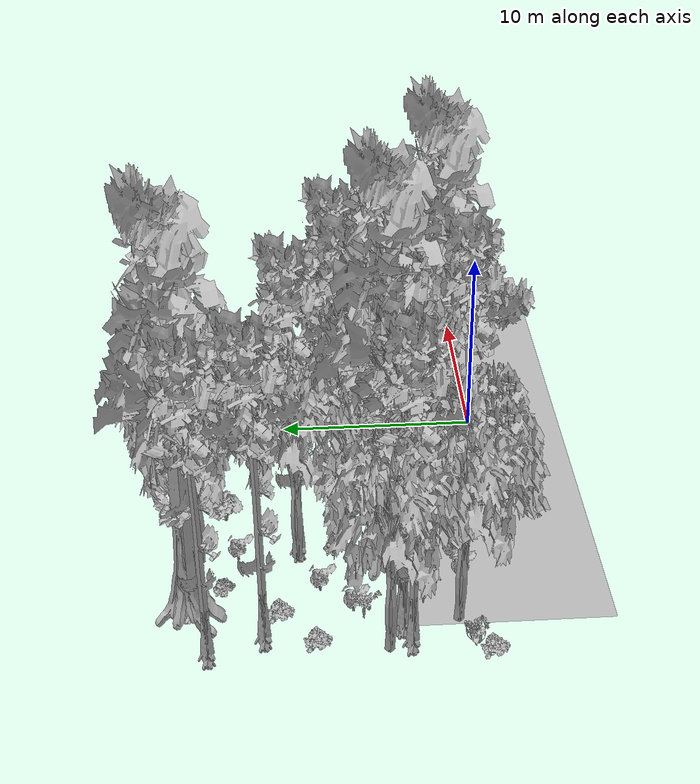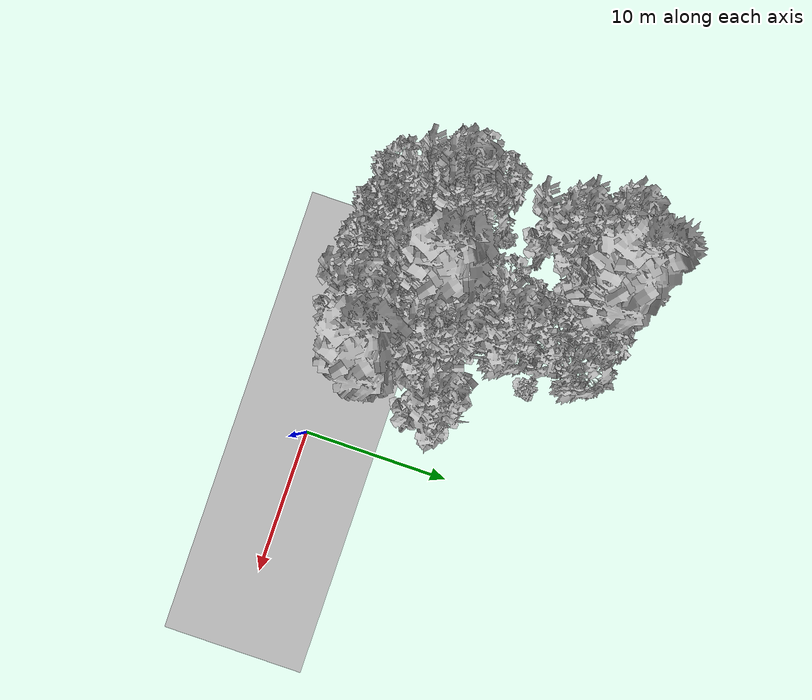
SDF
<sdf version="1.7">
 <world name="default">
  <model name="ground_plane">
   <static>1</static>
   <link name="link">
    <collision name="collision">
     <geometry><plane><normal>0 0 1</normal><size>100 100</size></plane></geometry>
     <surface><contact><ode><min_depth>0.01</min_depth><max_vel>0</max_vel></ode></contact></surface>
    </collision>
    <visual name="grass">
     <cast_shadows>0</cast_shadows>
     <geometry>
      <mesh>
       <scale>0.5814285714285714 0.18142857142857144 0.1</scale>
       <uri>file://grass_plane/meshes/grass_plane.dae</uri>
      </mesh>
     </geometry>
    </visual>
   </link>
  </model>
  <model name="Tree 23">
   <static>1</static>
   <pose>-11.818554850499751 4.779480041875914 0 1.57079 -0 0</pose>
   <link name="link">
    <collision name="collision">
     <geometry><mesh><scale>3.5 5 3.5</scale><uri>model://tree_9/meshes/tree_9.obj</uri></mesh></geometry>
    </collision>
    <visual name="visual">
     <geometry><mesh><scale>3.5 5 3.5</scale><uri>model://tree_9/meshes/tree_9.obj</uri></mesh></geometry>
    </visual>
   </link>
  </model>
  <model name="Tree 41">
   <static>1</static>
   <pose>-17.222248262785584 5.614314968492618 0 1.57079 -0 0</pose>
   <link name="link">
    <collision name="collision">
     <geometry><mesh><scale>3.5 5 3.5</scale><uri>model://tree_2/meshes/tree_2.obj</uri></mesh></geometry>
    </collision>
    <visual name="visual">
     <geometry><mesh><scale>3.5 5 3.5</scale><uri>model://tree_2/meshes/tree_2.obj</uri></mesh></geometry>
    </visual>
   </link>
  </model>
  <model name="Tree 46">
   <static>1</static>
   <pose>-13.187777131244381 1.9382227546065316 0 1.57079 -0 0</pose>
   <link name="link">
    <collision name="collision">
     <geometry><mesh><scale>3.5 5 3.5</scale><uri>model://tree_2/meshes/tree_2.obj</uri></mesh></geometry>
    </collision>
    <visual name="visual">
     <geometry><mesh><scale>3.5 5 3.5</scale><uri>model://tree_2/meshes/tree_2.obj</uri></mesh></geometry>
    </visual>
   </link>
  </model>
  <model name="Tree 60">
   <static>1</static>
   <pose>-6.207286731355687 2.621393358264843 0 1.57079 -0 0</pose>
   <link name="link">
    <collision name="collision">
     <geometry><mesh><scale>3.5 5 3.5</scale><uri>model://tree_4/meshes/tree_4.obj</uri></mesh></geometry>
    </collision>
    <visual name="visual">
     <geometry><mesh><scale>3.5 5 3.5</scale><uri>model://tree_4/meshes/tree_4.obj</uri></mesh></geometry>
    </visual>
   </link>
  </model>
  <model name="Tree 68">
   <static>1</static>
   <pose>-15.966507901455167 11.190178659626554 0 1.57079 -0 0</pose>
   <link name="link">
    <collision name="collision">
     <geometry><mesh><scale>3.5 5 3.5</scale><uri>model://tree_9/meshes/tree_9.obj</uri></mesh></geometry>
    </collision>
    <visual name="visual">
     <geometry><mesh><scale>3.5 5 3.5</scale><uri>model://tree_9/meshes/tree_9.obj</uri></mesh></geometry>
    </visual>
   </link>
  </model>
  <model name="Tree 103">
   <static>1</static>
   <pose>-7.960746110227625 5.341860858735469 0 1.57079 -0 0</pose>
   <link name="link">
    <collision name="collision">
     <geometry><mesh><scale>3.5 5 3.5</scale><uri>model://tree_9/meshes/tree_9.obj</uri></mesh></geometry>
    </collision>
    <visual name="visual">
     <geometry><mesh><scale>3.5 5 3.5</scale><uri>model://tree_9/meshes/tree_9.obj</uri></mesh></geometry>
    </visual>
   </link>
  </model>
  <model name="Tree 114">
   <static>1</static>
   <pose>-15.540538726655534 4.893649053372908 0 1.57079 -0 0</pose>
   <link name="link">
    <collision name="collision">
     <geometry><mesh><scale>3.5 5 3.5</scale><uri>model://tree_9/meshes/tree_9.obj</uri></mesh></geometry>
    </collision>
    <visual name="visual">
     <geometry><mesh><scale>3.5 5 3.5</scale><uri>model://tree_9/meshes/tree_9.obj</uri></mesh></geometry>
    </visual>
   </link>
  </model>
  <model name="Tree 128">
   <static>1</static>
   <pose>-14.082159465384422 14.536222618780723 0 1.57079 -0 0</pose>
   <link name="link">
    <collision name="collision">
     <geometry><mesh><scale>3.5 5 3.5</scale><uri>model://tree_4/meshes/tree_4.obj</uri></mesh></geometry>
    </collision>
    <visual name="visual">
     <geometry><mesh><scale>3.5 5 3.5</scale><uri>model://tree_4/meshes/tree_4.obj</uri></mesh></geometry>
    </visual>
   </link>
  </model>
  <model name="Tree 143">
   <static>1</static>
   <pose>-15.4959877633204 2.332693196801735 0 1.57079 -0 0</pose>
   <link name="link">
    <collision name="collision">
     <geometry><mesh><scale>3.5 5 3.5</scale><uri>model://tree_2/meshes/tree_2.obj</uri></mesh></geometry>
    </collision>
    <visual name="visual">
     <geometry><mesh><scale>3.5 5 3.5</scale><uri>model://tree_2/meshes/tree_2.obj</uri></mesh></geometry>
    </visual>
   </link>
  </model>
  <model name="Tree 152">
   <static>1</static>
   <pose>-9.91875326157021 9.4547125886331 0 1.57079 -0 0</pose>
   <link name="link">
    <collision name="collision">
     <geometry><mesh><scale>3.5 5 3.5</scale><uri>model://tree_9/meshes/tree_9.obj</uri></mesh></geometry>
    </collision>
    <visual name="visual">
     <geometry><mesh><scale>3.5 5 3.5</scale><uri>model://tree_9/meshes/tree_9.obj</uri></mesh></geometry>
    </visual>
   </link>
  </model>
  <model name="Tree 199">
   <static>1</static>
   <pose>-8.280369621626804 6.875583863120525 0 1.57079 -0 0</pose>
   <link name="link">
    <collision name="collision">
     <geometry><mesh><scale>3.5 5 3.5</scale><uri>model://tree_9/meshes/tree_9.obj</uri></mesh></geometry>
    </collision>
    <visual name="visual">
     <geometry><mesh><scale>3.5 5 3.5</scale><uri>model://tree_9/meshes/tree_9.obj</uri></mesh></geometry>
    </visual>
   </link>
  </model>
  <model name="Tree 233">
   <static>1</static>
   <pose>-10.930808138366785 4.563395180117645 0 1.57079 -0 0</pose>
   <link name="link">
    <collision name="collision">
     <geometry><mesh><scale>3.5 5 3.5</scale><uri>model://tree_9/meshes/tree_9.obj</uri></mesh></geometry>
    </collision>
    <visual name="visual">
     <geometry><mesh><scale>3.5 5 3.5</scale><uri>model://tree_9/meshes/tree_9.obj</uri></mesh></geometry>
    </visual>
   </link>
  </model>
  <model name="Tree 253">
   <static>1</static>
   <pose>-16.87975511325177 13.70785440915375 0 1.57079 -0 0</pose>
   <link name="link">
    <collision name="collision">
     <geometry><mesh><scale>3.5 5 3.5</scale><uri>model://tree_9/meshes/tree_9.obj</uri></mesh></geometry>
    </collision>
    <visual name="visual">
     <geometry><mesh><scale>3.5 5 3.5</scale><uri>model://tree_9/meshes/tree_9.obj</uri></mesh></geometry>
    </visual>
   </link>
  </model>
  <model name="Tree 270">
   <static>1</static>
   <pose>-10.692120012223832 9.53560949219164 0 1.57079 -0 0</pose>
   <link name="link">
    <collision name="collision">
     <geometry><mesh><scale>3.5 5 3.5</scale><uri>model://tree_2/meshes/tree_2.obj</uri></mesh></geometry>
    </collision>
    <visual name="visual">
     <geometry><mesh><scale>3.5 5 3.5</scale><uri>model://tree_2/meshes/tree_2.obj</uri></mesh></geometry>
    </visual>
   </link>
  </model>
  <model name="Tree 306">
   <static>1</static>
   <pose>-10.540950112092183 5.172705222903328 0 1.57079 -0 0</pose>
   <link name="link">
    <collision name="collision">
     <geometry><mesh><scale>3.5 5 3.5</scale><uri>model://tree_2/meshes/tree_2.obj</uri></mesh></geometry>
    </collision>
    <visual name="visual">
     <geometry><mesh><scale>3.5 5 3.5</scale><uri>model://tree_2/meshes/tree_2.obj</uri></mesh></geometry>
    </visual>
   </link>
  </model>
  <model name="Tree 332">
   <static>1</static>
   <pose>-16.639964847945834 4.57570754702666 0 1.57079 -0 0</pose>
   <link name="link">
    <collision name="collision">
     <geometry><mesh><scale>3.5 5 3.5</scale><uri>model://tree_9/meshes/tree_9.obj</uri></mesh></geometry>
    </collision>
    <visual name="visual">
     <geometry><mesh><scale>3.5 5 3.5</scale><uri>model://tree_9/meshes/tree_9.obj</uri></mesh></geometry>
    </visual>
   </link>
  </model>
  <model name="Tree 357">
   <static>1</static>
   <pose>-15.363287156652369 4.962918125460238 0 1.57079 -0 0</pose>
   <link name="link">
    <collision name="collision">
     <geometry><mesh><scale>3.5 5 3.5</scale><uri>model://tree_9/meshes/tree_9.obj</uri></mesh></geometry>
    </collision>
    <visual name="visual">
     <geometry><mesh><scale>3.5 5 3.5</scale><uri>model://tree_9/meshes/tree_9.obj</uri></mesh></geometry>
    </visual>
   </link>
  </model>
  <model name="Tree 362">
   <static>1</static>
   <pose>-11.349505516098759 5.461158906671169 0 1.57079 -0 0</pose>
   <link name="link">
    <collision name="collision">
     <geometry><mesh><scale>3.5 5 3.5</scale><uri>model://tree_4/meshes/tree_4.obj</uri></mesh></geometry>
    </collision>
    <visual name="visual">
     <geometry><mesh><scale>3.5 5 3.5</scale><uri>model://tree_4/meshes/tree_4.obj</uri></mesh></geometry>
    </visual>
   </link>
  </model>
  <model name="Tree 371">
   <static>1</static>
   <pose>-6.192837571988079 3.274893601886724 0 1.57079 -0 0</pose>
   <link name="link">
    <collision name="collision">
     <geometry><mesh><scale>3.5 5 3.5</scale><uri>model://tree_9/meshes/tree_9.obj</uri></mesh></geometry>
    </collision>
    <visual name="visual">
     <geometry><mesh><scale>3.5 5 3.5</scale><uri>model://tree_9/meshes/tree_9.obj</uri></mesh></geometry>
    </visual>
   </link>
  </model>
  <model name="Tree 381">
   <static>1</static>
   <pose>-4.665152386450565 7.2069608199087725 0 1.57079 -0 0</pose>
   <link name="link">
    <collision name="collision">
     <geometry><mesh><scale>3.5 5 3.5</scale><uri>model://tree_9/meshes/tree_9.obj</uri></mesh></geometry>
    </collision>
    <visual name="visual">
     <geometry><mesh><scale>3.5 5 3.5</scale><uri>model://tree_9/meshes/tree_9.obj</uri></mesh></geometry>
    </visual>
   </link>
  </model>
  <model name="Tree 427">
   <static>1</static>
   <pose>-8.679567506703293 1.3437048334381494 0 1.57079 -0 0</pose>
   <link name="link">
    <collision name="collision">
     <geometry><mesh><scale>3.5 5 3.5</scale><uri>model://tree_9/meshes/tree_9.obj</uri></mesh></geometry>
    </collision>
    <visual name="visual">
     <geometry><mesh><scale>3.5 5 3.5</scale><uri>model://tree_9/meshes/tree_9.obj</uri></mesh></geometry>
    </visual>
   </link>
  </model>
  <model name="Tree 449">
   <static>1</static>
   <pose>-10.745559329517135 14.154895496986232 0 1.57079 -0 0</pose>
   <link name="link">
    <collision name="collision">
     <geometry><mesh><scale>3.5 5 3.5</scale><uri>model://tree_2/meshes/tree_2.obj</uri></mesh></geometry>
    </collision>
    <visual name="visual">
     <geometry><mesh><scale>3.5 5 3.5</scale><uri>model://tree_2/meshes/tree_2.obj</uri></mesh></geometry>
    </visual>
   </link>
  </model>
  <model name="Bush 28">
   <static>1</static>
   <pose>-12.549037422135044 1.9633630091779146 0 1.57079 -0 0</pose>
   <link name="link">
    <collision name="collision">
     <geometry><mesh><scale>2 2 2</scale><uri>model://bush_0/meshes/bush_0.obj</uri></mesh></geometry>
     <surface><contact><collide_without_contact>false</collide_without_contact></contact></surface>
    </collision>
    <visual name="visual">
     <geometry><mesh><scale>2 2 2</scale><uri>model://bush_0/meshes/bush_0.obj</uri></mesh></geometry>
    </visual>
   </link>
  </model>
  <model name="Bush 32">
   <static>1</static>
   <pose>-14.380478980024094 14.650564487299963 0 1.57079 -0 0</pose>
   <link name="link">
    <collision name="collision">
     <geometry><mesh><scale>2 2 2</scale><uri>model://bush_2/meshes/bush_2.obj</uri></mesh></geometry>
     <surface><contact><collide_without_contact>false</collide_without_contact></contact></surface>
    </collision>
    <visual name="visual">
     <geometry><mesh><scale>2 2 2</scale><uri>model://bush_2/meshes/bush_2.obj</uri></mesh></geometry>
    </visual>
   </link>
  </model>
  <model name="Bush 57">
   <static>1</static>
   <pose>-13.03138302742412 8.566727882563928 0 1.57079 -0 0</pose>
   <link name="link">
    <collision name="collision">
     <geometry><mesh><scale>2 2 2</scale><uri>model://bush_0/meshes/bush_0.obj</uri></mesh></geometry>
     <surface><contact><collide_without_contact>false</collide_without_contact></contact></surface>
    </collision>
    <visual name="visual">
     <geometry><mesh><scale>2 2 2</scale><uri>model://bush_0/meshes/bush_0.obj</uri></mesh></geometry>
    </visual>
   </link>
  </model>
  <model name="Bush 71">
   <static>1</static>
   <pose>-11.122695967603455 6.030150215499546 0 1.57079 -0 0</pose>
   <link name="link">
    <collision name="collision">
     <geometry><mesh><scale>2 2 2</scale><uri>model://bush_5/meshes/bush_5.obj</uri></mesh></geometry>
     <surface><contact><collide_without_contact>false</collide_without_contact></contact></surface>
    </collision>
    <visual name="visual">
     <geometry><mesh><scale>2 2 2</scale><uri>model://bush_5/meshes/bush_5.obj</uri></mesh></geometry>
    </visual>
   </link>
  </model>
  <model name="Bush 96">
   <static>1</static>
   <pose>-14.523499983945172 7.112788049363164 0 1.57079 -0 0</pose>
   <link name="link">
    <collision name="collision">
     <geometry><mesh><scale>2 2 2</scale><uri>model://bush_0/meshes/bush_0.obj</uri></mesh></geometry>
     <surface><contact><collide_without_contact>false</collide_without_contact></contact></surface>
    </collision>
    <visual name="visual">
     <geometry><mesh><scale>2 2 2</scale><uri>model://bush_0/meshes/bush_0.obj</uri></mesh></geometry>
    </visual>
   </link>
  </model>
  <model name="Bush 114">
   <static>1</static>
   <pose>-10.097501558235322 7.750137200786323 0 1.57079 -0 0</pose>
   <link name="link">
    <collision name="collision">
     <geometry><mesh><scale>2 2 2</scale><uri>model://bush_2/meshes/bush_2.obj</uri></mesh></geometry>
     <surface><contact><collide_without_contact>false</collide_without_contact></contact></surface>
    </collision>
    <visual name="visual">
     <geometry><mesh><scale>2 2 2</scale><uri>model://bush_2/meshes/bush_2.obj</uri></mesh></geometry>
    </visual>
   </link>
  </model>
  <model name="Bush 115">
   <static>1</static>
   <pose>-11.18006539573399 2.2277751627468874 0 1.57079 -0 0</pose>
   <link name="link">
    <collision name="collision">
     <geometry><mesh><scale>2 2 2</scale><uri>model://bush_0/meshes/bush_0.obj</uri></mesh></geometry>
     <surface><contact><collide_without_contact>false</collide_without_contact></contact></surface>
    </collision>
    <visual name="visual">
     <geometry><mesh><scale>2 2 2</scale><uri>model://bush_0/meshes/bush_0.obj</uri></mesh></geometry>
    </visual>
   </link>
  </model>
  <model name="Bush 142">
   <static>1</static>
   <pose>-12.680316343734077 13.025428469059182 0 1.57079 -0 0</pose>
   <link name="link">
    <collision name="collision">
     <geometry><mesh><scale>2 2 2</scale><uri>model://bush_2/meshes/bush_2.obj</uri></mesh></geometry>
     <surface><contact><collide_without_contact>false</collide_without_contact></contact></surface>
    </collision>
    <visual name="visual">
     <geometry><mesh><scale>2 2 2</scale><uri>model://bush_2/meshes/bush_2.obj</uri></mesh></geometry>
    </visual>
   </link>
  </model>
  <model name="Bush 152">
   <static>1</static>
   <pose>-14.17267036517574 3.876423809300938 0 1.57079 -0 0</pose>
   <link name="link">
    <collision name="collision">
     <geometry><mesh><scale>2 2 2</scale><uri>model://bush_5/meshes/bush_5.obj</uri></mesh></geometry>
     <surface><contact><collide_without_contact>false</collide_without_contact></contact></surface>
    </collision>
    <visual name="visual">
     <geometry><mesh><scale>2 2 2</scale><uri>model://bush_5/meshes/bush_5.obj</uri></mesh></geometry>
    </visual>
   </link>
  </model>
  <model name="Bush 153">
   <static>1</static>
   <pose>-10.617545263969866 12.37486369726432 0 1.57079 -0 0</pose>
   <link name="link">
    <collision name="collision">
     <geometry><mesh><scale>2 2 2</scale><uri>model://bush_0/meshes/bush_0.obj</uri></mesh></geometry>
     <surface><contact><collide_without_contact>false</collide_without_contact></contact></surface>
    </collision>
    <visual name="visual">
     <geometry><mesh><scale>2 2 2</scale><uri>model://bush_0/meshes/bush_0.obj</uri></mesh></geometry>
    </visual>
   </link>
  </model>
  <model name="Bush 156">
   <static>1</static>
   <pose>-15.015591693858319 6.667597978770573 0 1.57079 -0 0</pose>
   <link name="link">
    <collision name="collision">
     <geometry><mesh><scale>2 2 2</scale><uri>model://bush_5/meshes/bush_5.obj</uri></mesh></geometry>
     <surface><contact><collide_without_contact>false</collide_without_contact></contact></surface>
    </collision>
    <visual name="visual">
     <geometry><mesh><scale>2 2 2</scale><uri>model://bush_5/meshes/bush_5.obj</uri></mesh></geometry>
    </visual>
   </link>
  </model>
  <model name="Bush 179">
   <static>1</static>
   <pose>-16.72093320903972 8.852968706021798 0 1.57079 -0 0</pose>
   <link name="link">
    <collision name="collision">
     <geometry><mesh><scale>2 2 2</scale><uri>model://bush_3/meshes/bush_3.obj</uri></mesh></geometry>
     <surface><contact><collide_without_contact>false</collide_without_contact></contact></surface>
    </collision>
    <visual name="visual">
     <geometry><mesh><scale>2 2 2</scale><uri>model://bush_3/meshes/bush_3.obj</uri></mesh></geometry>
    </visual>
   </link>
  </model>
  <model name="Bush 185">
   <static>1</static>
   <pose>-4.58188149309715 1.5176636465596545 0 1.57079 -0 0</pose>
   <link name="link">
    <collision name="collision">
     <geometry><mesh><scale>2 2 2</scale><uri>model://bush_0/meshes/bush_0.obj</uri></mesh></geometry>
     <surface><contact><collide_without_contact>false</collide_without_contact></contact></surface>
    </collision>
    <visual name="visual">
     <geometry><mesh><scale>2 2 2</scale><uri>model://bush_0/meshes/bush_0.obj</uri></mesh></geometry>
    </visual>
   </link>
  </model>
  <model name="Bush 209">
   <static>1</static>
   <pose>-7.61258079041923 12.972474400695454 0 1.57079 -0 0</pose>
   <link name="link">
    <collision name="collision">
     <geometry><mesh><scale>2 2 2</scale><uri>model://bush_1/meshes/bush_1.obj</uri></mesh></geometry>
     <surface><contact><collide_without_contact>false</collide_without_contact></contact></surface>
    </collision>
    <visual name="visual">
     <geometry><mesh><scale>2 2 2</scale><uri>model://bush_1/meshes/bush_1.obj</uri></mesh></geometry>
    </visual>
   </link>
  </model>
  <model name="Bush 235">
   <static>1</static>
   <pose>-16.965912460908214 1.7276142188101495 0 1.57079 -0 0</pose>
   <link name="link">
    <collision name="collision">
     <geometry><mesh><scale>2 2 2</scale><uri>model://bush_4/meshes/bush_4.obj</uri></mesh></geometry>
     <surface><contact><collide_without_contact>false</collide_without_contact></contact></surface>
    </collision>
    <visual name="visual">
     <geometry><mesh><scale>2 2 2</scale><uri>model://bush_4/meshes/bush_4.obj</uri></mesh></geometry>
    </visual>
   </link>
  </model>
  <model name="Bush 242">
   <static>1</static>
   <pose>-14.763912508183253 10.482806082376438 0 1.57079 -0 0</pose>
   <link name="link">
    <collision name="collision">
     <geometry><mesh><scale>2 2 2</scale><uri>model://bush_3/meshes/bush_3.obj</uri></mesh></geometry>
     <surface><contact><collide_without_contact>false</collide_without_contact></contact></surface>
    </collision>
    <visual name="visual">
     <geometry><mesh><scale>2 2 2</scale><uri>model://bush_3/meshes/bush_3.obj</uri></mesh></geometry>
    </visual>
   </link>
  </model>
  <model name="Bush 266">
   <static>1</static>
   <pose>-9.453519131715396 1.7248617977771161 0 1.57079 -0 0</pose>
   <link name="link">
    <collision name="collision">
     <geometry><mesh><scale>2 2 2</scale><uri>model://bush_1/meshes/bush_1.obj</uri></mesh></geometry>
     <surface><contact><collide_without_contact>false</collide_without_contact></contact></surface>
    </collision>
    <visual name="visual">
     <geometry><mesh><scale>2 2 2</scale><uri>model://bush_1/meshes/bush_1.obj</uri></mesh></geometry>
    </visual>
   </link>
  </model>
  <model name="Bush 278">
   <static>1</static>
   <pose>-9.306834563742171 7.324417220069552 0 1.57079 -0 0</pose>
   <link name="link">
    <collision name="collision">
     <geometry><mesh><scale>2 2 2</scale><uri>model://bush_3/meshes/bush_3.obj</uri></mesh></geometry>
     <surface><contact><collide_without_contact>false</collide_without_contact></contact></surface>
    </collision>
    <visual name="visual">
     <geometry><mesh><scale>2 2 2</scale><uri>model://bush_3/meshes/bush_3.obj</uri></mesh></geometry>
    </visual>
   </link>
  </model>
  <model name="Bush 281">
   <static>1</static>
   <pose>-4.952660353998439 6.065892008409264 0 1.57079 -0 0</pose>
   <link name="link">
    <collision name="collision">
     <geometry><mesh><scale>2 2 2</scale><uri>model://bush_2/meshes/bush_2.obj</uri></mesh></geometry>
     <surface><contact><collide_without_contact>false</collide_without_contact></contact></surface>
    </collision>
    <visual name="visual">
     <geometry><mesh><scale>2 2 2</scale><uri>model://bush_2/meshes/bush_2.obj</uri></mesh></geometry>
    </visual>
   </link>
  </model>
  <model name="Bush 294">
   <static>1</static>
   <pose>-5.460823486494519 4.553784248234781 0 1.57079 -0 0</pose>
   <link name="link">
    <collision name="collision">
     <geometry><mesh><scale>2 2 2</scale><uri>model://bush_3/meshes/bush_3.obj</uri></mesh></geometry>
     <surface><contact><collide_without_contact>false</collide_without_contact></contact></surface>
    </collision>
    <visual name="visual">
     <geometry><mesh><scale>2 2 2</scale><uri>model://bush_3/meshes/bush_3.obj</uri></mesh></geometry>
    </visual>
   </link>
  </model>
  <model name="Bush 324">
   <static>1</static>
   <pose>-17.638511347724872 1.0618544947691433 0 1.57079 -0 0</pose>
   <link name="link">
    <collision name="collision">
     <geometry><mesh><scale>2 2 2</scale><uri>model://bush_3/meshes/bush_3.obj</uri></mesh></geometry>
     <surface><contact><collide_without_contact>false</collide_without_contact></contact></surface>
    </collision>
    <visual name="visual">
     <geometry><mesh><scale>2 2 2</scale><uri>model://bush_3/meshes/bush_3.obj</uri></mesh></geometry>
    </visual>
   </link>
  </model>
 </world>
</sdf>
